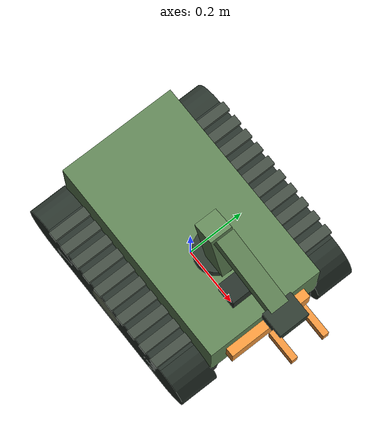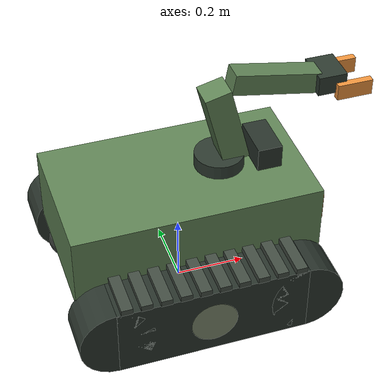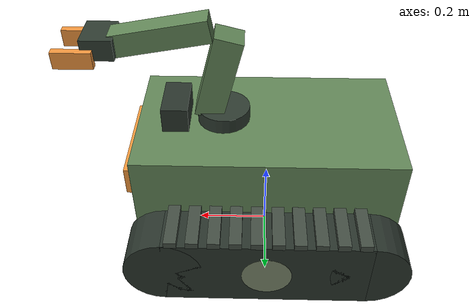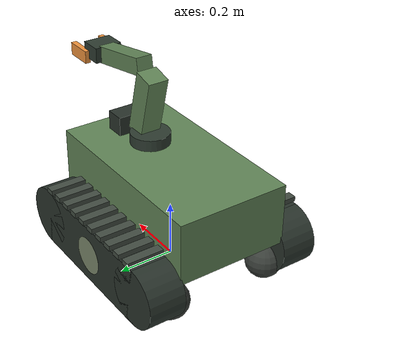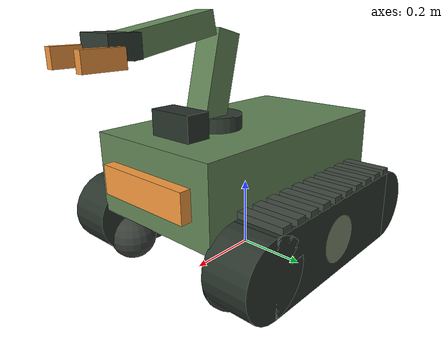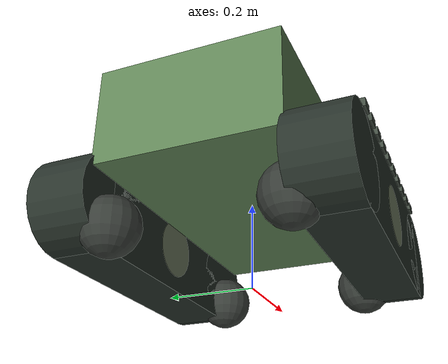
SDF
<?xml version='1.0' encoding='utf-8'?>
<sdf version="1.10">
  <model name="robot">
    <static>false</static>
    <link name="base_link">
      <inertial>
        <mass>60.6</mass>
        <pose>0 0 0.3 0 0 0</pose>
        <inertia>
          <ixx>1.0524200000000001</ixx>
          <iyy>2.7189200000000002</iyy>
          <izz>3.2824999999999993</izz>
        </inertia>
      </inertial>
      <collision name="body_collision">
        <pose>0 0 0.27 0 0 0</pose>
        <geometry>
          <box>
            <size>0.68 0.37 0.2</size>
          </box>
        </geometry>
        <surface>
          <friction>
            <ode>
              <mu>0.6</mu>
              <mu2>0.6</mu2>
            </ode>
          </friction>
        </surface>
      </collision>
      <visual name="body">
        <pose>0 0 0.28 0 0 0</pose>
        <geometry>
          <box>
            <size>0.7 0.4 0.22</size>
          </box>
        </geometry>
        <material>
          <diffuse>0.38 0.52 0.34 1</diffuse>
        </material>
      </visual>
      <visual name="front_marker">
        <pose>0.36 0 0.28 0 0 0</pose>
        <geometry>
          <box>
            <size>0.04 0.288 0.08</size>
          </box>
        </geometry>
        <material>
          <diffuse>0.96 0.6 0.24 1</diffuse>
        </material>
      </visual>
      <visual name="camera">
        <pose>0.24499999999999997 0 0.42300000000000004 0 0 0</pose>
        <geometry>
          <box>
            <size>0.07 0.13 0.07</size>
          </box>
        </geometry>
        <material>
          <diffuse>0.16 0.2 0.17 1</diffuse>
        </material>
      </visual>
      <visual name="left_track_envelope">
        <pose>0 0.26 0.125 0 0 0</pose>
        <geometry>
          <box>
            <size>0.54 0.13 0.21</size>
          </box>
        </geometry>
        <material>
          <diffuse>0.16 0.2 0.17 1</diffuse>
        </material>
      </visual>
      <visual name="left_rear_idler_visual">
        <pose>-0.27 0.26 0.125 1.5707963267948966 0 0</pose>
        <geometry>
          <cylinder>
            <radius>0.105</radius>
            <length>0.13</length>
          </cylinder>
        </geometry>
        <material>
          <diffuse>0.16 0.2 0.17 1</diffuse>
        </material>
      </visual>
      <visual name="left_front_idler_visual">
        <pose>0.27 0.26 0.125 1.5707963267948966 0 0</pose>
        <geometry>
          <cylinder>
            <radius>0.105</radius>
            <length>0.13</length>
          </cylinder>
        </geometry>
        <material>
          <diffuse>0.16 0.2 0.17 1</diffuse>
        </material>
      </visual>
      <visual name="left_tread_0">
        <pose>-0.24300000000000002 0.26 0.242 0 0 0</pose>
        <geometry>
          <box>
            <size>0.032 0.14040000000000002 0.018</size>
          </box>
        </geometry>
        <material>
          <diffuse>0.26 0.3 0.26 1</diffuse>
        </material>
      </visual>
      <visual name="left_tread_1">
        <pose>-0.189 0.26 0.242 0 0 0</pose>
        <geometry>
          <box>
            <size>0.032 0.14040000000000002 0.018</size>
          </box>
        </geometry>
        <material>
          <diffuse>0.26 0.3 0.26 1</diffuse>
        </material>
      </visual>
      <visual name="left_tread_2">
        <pose>-0.135 0.26 0.242 0 0 0</pose>
        <geometry>
          <box>
            <size>0.032 0.14040000000000002 0.018</size>
          </box>
        </geometry>
        <material>
          <diffuse>0.26 0.3 0.26 1</diffuse>
        </material>
      </visual>
      <visual name="left_tread_3">
        <pose>-0.08100000000000002 0.26 0.242 0 0 0</pose>
        <geometry>
          <box>
            <size>0.032 0.14040000000000002 0.018</size>
          </box>
        </geometry>
        <material>
          <diffuse>0.26 0.3 0.26 1</diffuse>
        </material>
      </visual>
      <visual name="left_tread_4">
        <pose>-0.026999999999999996 0.26 0.242 0 0 0</pose>
        <geometry>
          <box>
            <size>0.032 0.14040000000000002 0.018</size>
          </box>
        </geometry>
        <material>
          <diffuse>0.26 0.3 0.26 1</diffuse>
        </material>
      </visual>
      <visual name="left_tread_5">
        <pose>0.027000000000000024 0.26 0.242 0 0 0</pose>
        <geometry>
          <box>
            <size>0.032 0.14040000000000002 0.018</size>
          </box>
        </geometry>
        <material>
          <diffuse>0.26 0.3 0.26 1</diffuse>
        </material>
      </visual>
      <visual name="left_tread_6">
        <pose>0.08100000000000002 0.26 0.242 0 0 0</pose>
        <geometry>
          <box>
            <size>0.032 0.14040000000000002 0.018</size>
          </box>
        </geometry>
        <material>
          <diffuse>0.26 0.3 0.26 1</diffuse>
        </material>
      </visual>
      <visual name="left_tread_7">
        <pose>0.13500000000000006 0.26 0.242 0 0 0</pose>
        <geometry>
          <box>
            <size>0.032 0.14040000000000002 0.018</size>
          </box>
        </geometry>
        <material>
          <diffuse>0.26 0.3 0.26 1</diffuse>
        </material>
      </visual>
      <visual name="left_tread_8">
        <pose>0.18899999999999995 0.26 0.242 0 0 0</pose>
        <geometry>
          <box>
            <size>0.032 0.14040000000000002 0.018</size>
          </box>
        </geometry>
        <material>
          <diffuse>0.26 0.3 0.26 1</diffuse>
        </material>
      </visual>
      <visual name="left_tread_9">
        <pose>0.2430000000000001 0.26 0.242 0 0 0</pose>
        <geometry>
          <box>
            <size>0.032 0.14040000000000002 0.018</size>
          </box>
        </geometry>
        <material>
          <diffuse>0.26 0.3 0.26 1</diffuse>
        </material>
      </visual>
      <visual name="right_track_envelope">
        <pose>0 -0.26 0.125 0 0 0</pose>
        <geometry>
          <box>
            <size>0.54 0.13 0.21</size>
          </box>
        </geometry>
        <material>
          <diffuse>0.16 0.2 0.17 1</diffuse>
        </material>
      </visual>
      <visual name="right_rear_idler_visual">
        <pose>-0.27 -0.26 0.125 1.5707963267948966 0 0</pose>
        <geometry>
          <cylinder>
            <radius>0.105</radius>
            <length>0.13</length>
          </cylinder>
        </geometry>
        <material>
          <diffuse>0.16 0.2 0.17 1</diffuse>
        </material>
      </visual>
      <visual name="right_front_idler_visual">
        <pose>0.27 -0.26 0.125 1.5707963267948966 0 0</pose>
        <geometry>
          <cylinder>
            <radius>0.105</radius>
            <length>0.13</length>
          </cylinder>
        </geometry>
        <material>
          <diffuse>0.16 0.2 0.17 1</diffuse>
        </material>
      </visual>
      <visual name="right_tread_0">
        <pose>-0.24300000000000002 -0.26 0.242 0 0 0</pose>
        <geometry>
          <box>
            <size>0.032 0.14040000000000002 0.018</size>
          </box>
        </geometry>
        <material>
          <diffuse>0.26 0.3 0.26 1</diffuse>
        </material>
      </visual>
      <visual name="right_tread_1">
        <pose>-0.189 -0.26 0.242 0 0 0</pose>
        <geometry>
          <box>
            <size>0.032 0.14040000000000002 0.018</size>
          </box>
        </geometry>
        <material>
          <diffuse>0.26 0.3 0.26 1</diffuse>
        </material>
      </visual>
      <visual name="right_tread_2">
        <pose>-0.135 -0.26 0.242 0 0 0</pose>
        <geometry>
          <box>
            <size>0.032 0.14040000000000002 0.018</size>
          </box>
        </geometry>
        <material>
          <diffuse>0.26 0.3 0.26 1</diffuse>
        </material>
      </visual>
      <visual name="right_tread_3">
        <pose>-0.08100000000000002 -0.26 0.242 0 0 0</pose>
        <geometry>
          <box>
            <size>0.032 0.14040000000000002 0.018</size>
          </box>
        </geometry>
        <material>
          <diffuse>0.26 0.3 0.26 1</diffuse>
        </material>
      </visual>
      <visual name="right_tread_4">
        <pose>-0.026999999999999996 -0.26 0.242 0 0 0</pose>
        <geometry>
          <box>
            <size>0.032 0.14040000000000002 0.018</size>
          </box>
        </geometry>
        <material>
          <diffuse>0.26 0.3 0.26 1</diffuse>
        </material>
      </visual>
      <visual name="right_tread_5">
        <pose>0.027000000000000024 -0.26 0.242 0 0 0</pose>
        <geometry>
          <box>
            <size>0.032 0.14040000000000002 0.018</size>
          </box>
        </geometry>
        <material>
          <diffuse>0.26 0.3 0.26 1</diffuse>
        </material>
      </visual>
      <visual name="right_tread_6">
        <pose>0.08100000000000002 -0.26 0.242 0 0 0</pose>
        <geometry>
          <box>
            <size>0.032 0.14040000000000002 0.018</size>
          </box>
        </geometry>
        <material>
          <diffuse>0.26 0.3 0.26 1</diffuse>
        </material>
      </visual>
      <visual name="right_tread_7">
        <pose>0.13500000000000006 -0.26 0.242 0 0 0</pose>
        <geometry>
          <box>
            <size>0.032 0.14040000000000002 0.018</size>
          </box>
        </geometry>
        <material>
          <diffuse>0.26 0.3 0.26 1</diffuse>
        </material>
      </visual>
      <visual name="right_tread_8">
        <pose>0.18899999999999995 -0.26 0.242 0 0 0</pose>
        <geometry>
          <box>
            <size>0.032 0.14040000000000002 0.018</size>
          </box>
        </geometry>
        <material>
          <diffuse>0.26 0.3 0.26 1</diffuse>
        </material>
      </visual>
      <visual name="right_tread_9">
        <pose>0.2430000000000001 -0.26 0.242 0 0 0</pose>
        <geometry>
          <box>
            <size>0.032 0.14040000000000002 0.018</size>
          </box>
        </geometry>
        <material>
          <diffuse>0.26 0.3 0.26 1</diffuse>
        </material>
      </visual>
      <visual name="arm_base_0">
        <pose>0.12 0 0.38 0 0 0</pose>
        <geometry>
          <cylinder>
            <radius>0.07</radius>
            <length>0.1</length>
          </cylinder>
        </geometry>
        <material>
          <diffuse>0.18 0.23 0.19 1</diffuse>
        </material>
      </visual>
      <visual name="upper_arm_0">
        <pose>0.13 0 0.53 0 -0.25 0</pose>
        <geometry>
          <box>
            <size>0.075 0.075 0.23</size>
          </box>
        </geometry>
        <material>
          <diffuse>0.38 0.52 0.34 1</diffuse>
        </material>
      </visual>
      <visual name="forearm_0">
        <pose>0.27 0 0.64 0 0.18 0</pose>
        <geometry>
          <box>
            <size>0.25 0.06 0.06</size>
          </box>
        </geometry>
        <material>
          <diffuse>0.38 0.52 0.34 1</diffuse>
        </material>
      </visual>
      <visual name="wrist_0">
        <pose>0.42 0 0.62 0 0 0</pose>
        <geometry>
          <box>
            <size>0.08 0.1 0.055</size>
          </box>
        </geometry>
        <material>
          <diffuse>0.18 0.23 0.19 1</diffuse>
        </material>
      </visual>
      <visual name="jaw_0_-0.055">
        <pose>0.48 -0.055 0.6 0 0 0</pose>
        <geometry>
          <box>
            <size>0.1 0.02 0.045</size>
          </box>
        </geometry>
        <material>
          <diffuse>0.94 0.58 0.24 1</diffuse>
        </material>
      </visual>
      <visual name="jaw_0_0.055">
        <pose>0.48 0.055 0.6 0 0 0</pose>
        <geometry>
          <box>
            <size>0.1 0.02 0.045</size>
          </box>
        </geometry>
        <material>
          <diffuse>0.94 0.58 0.24 1</diffuse>
        </material>
      </visual>
      <sensor name="imu" type="imu">
        <always_on>true</always_on>
        <update_rate>50</update_rate>
        <topic>/garden/imu</topic>
        <imu />
      </sensor>
    </link>
    <link name="left_wheel">
      <pose>0.0 0.26 0.12 1.5707963267948966 0 0</pose>
      <inertial>
        <mass>2.0</mass>
        <inertia>
          <ixx>0.00855</ixx>
          <iyy>0.00855</iyy>
          <izz>0.0144</izz>
        </inertia>
      </inertial>
      <collision name="wheel_collision">
        <pose>0 0 0 0 0 0</pose>
        <geometry>
          <cylinder>
            <radius>0.12</radius>
            <length>0.09</length>
          </cylinder>
        </geometry>
        <surface>
          <friction>
            <ode>
              <mu>0.6</mu>
              <mu2>0.6</mu2>
            </ode>
          </friction>
        </surface>
      </collision>
      <visual name="hub">
        <pose>0 0 0 0 0 0</pose>
        <geometry>
          <cylinder>
            <radius>0.066</radius>
            <length>0.1305</length>
          </cylinder>
        </geometry>
        <material>
          <diffuse>0.48 0.53 0.42 1</diffuse>
        </material>
      </visual>
    </link>
    <joint name="left_joint" type="revolute">
      <parent>base_link</parent>
      <child>left_wheel</child>
      <axis>
        <xyz>0 0 -1</xyz>
        <limit>
          <effort>40.0</effort>
          <velocity>8.0</velocity>
        </limit>
      </axis>
    </joint>
    <link name="right_wheel">
      <pose>0.0 -0.26 0.12 1.5707963267948966 0 0</pose>
      <inertial>
        <mass>2.0</mass>
        <inertia>
          <ixx>0.00855</ixx>
          <iyy>0.00855</iyy>
          <izz>0.0144</izz>
        </inertia>
      </inertial>
      <collision name="wheel_collision">
        <pose>0 0 0 0 0 0</pose>
        <geometry>
          <cylinder>
            <radius>0.12</radius>
            <length>0.09</length>
          </cylinder>
        </geometry>
        <surface>
          <friction>
            <ode>
              <mu>0.6</mu>
              <mu2>0.6</mu2>
            </ode>
          </friction>
        </surface>
      </collision>
      <visual name="hub">
        <pose>0 0 0 0 0 0</pose>
        <geometry>
          <cylinder>
            <radius>0.066</radius>
            <length>0.1305</length>
          </cylinder>
        </geometry>
        <material>
          <diffuse>0.48 0.53 0.42 1</diffuse>
        </material>
      </visual>
    </link>
    <joint name="right_joint" type="revolute">
      <parent>base_link</parent>
      <child>right_wheel</child>
      <axis>
        <xyz>0 0 -1</xyz>
        <limit>
          <effort>40.0</effort>
          <velocity>8.0</velocity>
        </limit>
      </axis>
    </joint>
    <link name="support_0">
      <pose>-0.28 -0.19 0.065 0 0 0</pose>
      <inertial>
        <mass>0.1</mass>
        <inertia>
          <ixx>0.00016900000000000004</ixx>
          <iyy>0.00016900000000000004</iyy>
          <izz>0.00016900000000000004</izz>
        </inertia>
      </inertial>
      <collision name="contact_collision">
        <pose>0 0 0 0 0 0</pose>
        <geometry>
          <sphere>
            <radius>0.065</radius>
          </sphere>
        </geometry>
        <surface>
          <friction>
            <ode>
              <mu>0.015</mu>
              <mu2>0.015</mu2>
            </ode>
          </friction>
        </surface>
      </collision>
      <visual name="contact">
        <pose>0 0 0 0 0 0</pose>
        <geometry>
          <sphere>
            <radius>0.065</radius>
          </sphere>
        </geometry>
        <material>
          <diffuse>0.22 0.24 0.22 1</diffuse>
        </material>
      </visual>
    </link>
    <joint name="support_0_fixed" type="fixed">
      <parent>base_link</parent>
      <child>support_0</child>
    </joint>
    <link name="support_1">
      <pose>-0.28 0.19 0.065 0 0 0</pose>
      <inertial>
        <mass>0.1</mass>
        <inertia>
          <ixx>0.00016900000000000004</ixx>
          <iyy>0.00016900000000000004</iyy>
          <izz>0.00016900000000000004</izz>
        </inertia>
      </inertial>
      <collision name="contact_collision">
        <pose>0 0 0 0 0 0</pose>
        <geometry>
          <sphere>
            <radius>0.065</radius>
          </sphere>
        </geometry>
        <surface>
          <friction>
            <ode>
              <mu>0.015</mu>
              <mu2>0.015</mu2>
            </ode>
          </friction>
        </surface>
      </collision>
      <visual name="contact">
        <pose>0 0 0 0 0 0</pose>
        <geometry>
          <sphere>
            <radius>0.065</radius>
          </sphere>
        </geometry>
        <material>
          <diffuse>0.22 0.24 0.22 1</diffuse>
        </material>
      </visual>
    </link>
    <joint name="support_1_fixed" type="fixed">
      <parent>base_link</parent>
      <child>support_1</child>
    </joint>
    <link name="support_2">
      <pose>0.28 -0.19 0.065 0 0 0</pose>
      <inertial>
        <mass>0.1</mass>
        <inertia>
          <ixx>0.00016900000000000004</ixx>
          <iyy>0.00016900000000000004</iyy>
          <izz>0.00016900000000000004</izz>
        </inertia>
      </inertial>
      <collision name="contact_collision">
        <pose>0 0 0 0 0 0</pose>
        <geometry>
          <sphere>
            <radius>0.065</radius>
          </sphere>
        </geometry>
        <surface>
          <friction>
            <ode>
              <mu>0.015</mu>
              <mu2>0.015</mu2>
            </ode>
          </friction>
        </surface>
      </collision>
      <visual name="contact">
        <pose>0 0 0 0 0 0</pose>
        <geometry>
          <sphere>
            <radius>0.065</radius>
          </sphere>
        </geometry>
        <material>
          <diffuse>0.22 0.24 0.22 1</diffuse>
        </material>
      </visual>
    </link>
    <joint name="support_2_fixed" type="fixed">
      <parent>base_link</parent>
      <child>support_2</child>
    </joint>
    <link name="support_3">
      <pose>0.28 0.19 0.065 0 0 0</pose>
      <inertial>
        <mass>0.1</mass>
        <inertia>
          <ixx>0.00016900000000000004</ixx>
          <iyy>0.00016900000000000004</iyy>
          <izz>0.00016900000000000004</izz>
        </inertia>
      </inertial>
      <collision name="contact_collision">
        <pose>0 0 0 0 0 0</pose>
        <geometry>
          <sphere>
            <radius>0.065</radius>
          </sphere>
        </geometry>
        <surface>
          <friction>
            <ode>
              <mu>0.015</mu>
              <mu2>0.015</mu2>
            </ode>
          </friction>
        </surface>
      </collision>
      <visual name="contact">
        <pose>0 0 0 0 0 0</pose>
        <geometry>
          <sphere>
            <radius>0.065</radius>
          </sphere>
        </geometry>
        <material>
          <diffuse>0.22 0.24 0.22 1</diffuse>
        </material>
      </visual>
    </link>
    <joint name="support_3_fixed" type="fixed">
      <parent>base_link</parent>
      <child>support_3</child>
    </joint>
    <plugin filename="gz-sim-diff-drive-system" name="gz::sim::systems::DiffDrive">
      <left_joint>left_joint</left_joint>
      <right_joint>right_joint</right_joint>
      <wheel_separation>0.52</wheel_separation>
      <wheel_radius>0.12</wheel_radius>
      <topic>/garden/cmd_vel</topic>
      <odom_topic>/garden/odom</odom_topic>
      <frame_id>odom</frame_id>
      <child_frame_id>base_link</child_frame_id>
      <odom_publish_frequency>30</odom_publish_frequency>
      <min_linear_velocity>-0.35</min_linear_velocity>
      <max_linear_velocity>0.35</max_linear_velocity>
      <min_angular_velocity>-0.9</min_angular_velocity>
      <max_angular_velocity>0.9</max_angular_velocity>
      <min_linear_acceleration>-0.6</min_linear_acceleration>
      <max_linear_acceleration>0.6</max_linear_acceleration>
      <min_angular_acceleration>-1.5</min_angular_acceleration>
      <max_angular_acceleration>1.5</max_angular_acceleration>
    </plugin>
    <plugin filename="gz-sim-joint-state-publisher-system" name="gz::sim::systems::JointStatePublisher">
      <topic>/garden/joint_states</topic>
      <joint_name>left_joint</joint_name>
      <joint_name>right_joint</joint_name>
      <update_rate>100</update_rate>
    </plugin>
    <plugin filename="gz-sim-pose-publisher-system" name="gz::sim::systems::PosePublisher">
      <publish_model_pose>true</publish_model_pose>
      <publish_link_pose>true</publish_link_pose>
      <publish_visual_pose>false</publish_visual_pose>
      <publish_collision_pose>false</publish_collision_pose>
      <publish_sensor_pose>false</publish_sensor_pose>
      <use_pose_vector_msg>true</use_pose_vector_msg>
      <update_frequency>20</update_frequency>
    </plugin>
  </model>
</sdf>
